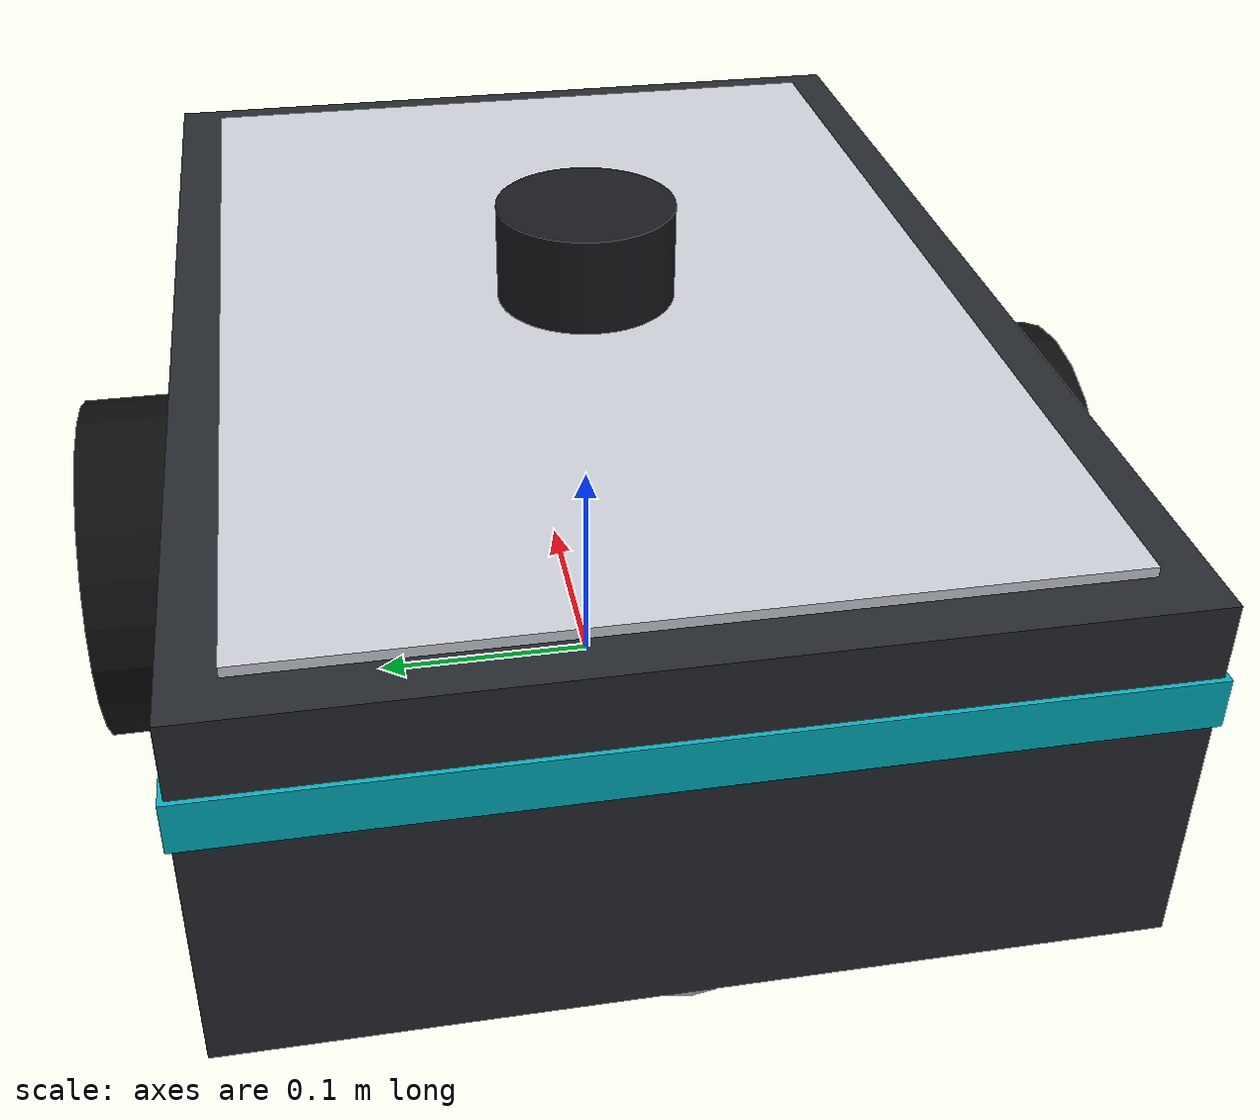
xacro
<?xml version="1.0"?>
<robot name="amr" xmlns:xacro="http://www.ros.org/wiki/xacro">

  <xacro:arg name="robot_name" default="robot_1"/>
  <xacro:arg name="accent_color" default="0.0 0.70 0.75 1.0"/>
  <xacro:arg name="use_sim" default="true"/>
  <xacro:arg name="use_zed_wrapper_frames" default="false"/>

  <xacro:property name="robot_name" value="$(arg robot_name)"/>

  <!-- ====================== TUNABLE PROPERTIES ====================== -->

  <!-- Chassis [m, kg] -->
  <xacro:property name="chassis_length"    value="0.50"/>
  <xacro:property name="chassis_width"     value="0.35"/>
  <xacro:property name="chassis_height"    value="0.15"/>
  <xacro:property name="chassis_mass"      value="12.0"/>
  <xacro:property name="ground_clearance"  value="0.04"/>   <!-- chassis underside to floor -->
  <xacro:property name="panel_thickness"   value="0.004"/>  <!-- light-gray top panel -->
  <xacro:property name="panel_inset"       value="0.02"/>   <!-- panel is smaller than chassis by 2x this -->
  <xacro:property name="panel_mass"        value="0.4"/>
  <xacro:property name="stripe_height"     value="0.02"/>   <!-- accent band around the chassis -->
  <xacro:property name="stripe_drop"       value="0.03"/>   <!-- band distance below chassis top -->
  <xacro:property name="stripe_mass"       value="0.1"/>

  <!-- Drive wheels -->
  <xacro:property name="wheel_radius"      value="0.075"/>
  <xacro:property name="wheel_width"       value="0.04"/>
  <xacro:property name="wheel_separation"  value="0.40"/>   <!-- center-to-center -->
  <xacro:property name="wheel_mass"        value="1.2"/>

  <!-- Passive casters (front and rear, frictionless spheres) -->
  <xacro:property name="caster_radius"     value="0.04"/>   <!-- keep equal to ground_clearance -->
  <xacro:property name="caster_x"          value="0.20"/>   <!-- +/- from base_link -->
  <xacro:property name="caster_mass"       value="0.3"/>

  <!-- Lidar (position in base_link, measured from the top of the light-gray panel) -->
  <xacro:property name="lidar_x"                 value="0.0"/>
  <xacro:property name="lidar_y"                 value="0.0"/>
  <xacro:property name="lidar_height_above_mount" value="0.0"/>   <!-- lift of mesh bottom above panel -->
  <xacro:property name="lidar_scan_height"       value="0.0207"/> <!-- scan plane above mesh bottom [PLACEHOLDER: check datasheet] -->
  <xacro:property name="lidar_mass"              value="0.19"/>
  <xacro:property name="lidar_collision_radius"  value="0.038"/>
  <xacro:property name="lidar_collision_height"  value="0.041"/>

  <!-- ZED camera (center of the camera body) -->
  <xacro:property name="zed_name"                value="zed"/>
  <xacro:property name="zed_x"                   value="0.268"/> <!-- in base_link: chassis front (0.25) + 2 mm band + zed_size_x/2 -->
  <xacro:property name="zed_y"                   value="0.0"/>
  <xacro:property name="zed_baseline"            value="0.12"/>
  <xacro:property name="zed_mass"                value="0.124"/>
  <xacro:property name="zed_size_x"              value="0.032"/> <!-- collision box -->
  <xacro:property name="zed_size_y"              value="0.175"/>
  <xacro:property name="zed_size_z"              value="0.030"/>
  <xacro:property name="zed_mesh_yaw"            value="0.0"/>   <!-- set to ${pi} if the mesh faces backwards -->

  <!-- ====================== DERIVED VALUES ====================== -->
  <!-- base_link sits on the wheel axle; base_footprint is on the floor below it. -->
  <xacro:property name="chassis_z"     value="${ground_clearance + chassis_height / 2.0 - wheel_radius}"/>
  <xacro:property name="chassis_top_z" value="${chassis_z + chassis_height / 2.0 + panel_thickness}"/>
  <xacro:property name="lidar_z"       value="${chassis_top_z + lidar_height_above_mount + lidar_scan_height}"/>
  <xacro:property name="zed_z"         value="${chassis_z}"/>  <!-- camera centered on the front face of the chassis -->

  <!-- Mesh path: absolute file:// for Gazebo, package:// for RViz/URDF-only use. -->
  <xacro:if value="$(arg use_sim)">
    <xacro:property name="mesh_prefix" value="file://$(find fleet_description)/meshes/"/>
  </xacro:if>
  <xacro:unless value="$(arg use_sim)">
    <xacro:property name="mesh_prefix" value="package://fleet_description/meshes/"/>
  </xacro:unless>

  <!-- Frame the center RGB-D sensor is attached to. -->
  <xacro:if value="$(arg use_zed_wrapper_frames)">
    <xacro:property name="zed_center_frame" value="${zed_name}_camera_center"/>
  </xacro:if>
  <xacro:unless value="$(arg use_zed_wrapper_frames)">
    <xacro:property name="zed_center_frame" value="${zed_name}_camera_link"/>
  </xacro:unless>

  <!-- ====================== INCLUDES ====================== -->
  <xacro:include filename="inertial.xacro"/>
  <xacro:include filename="materials.xacro"/>
  <xacro:include filename="amr_body.xacro"/>
  <xacro:include filename="lidar.xacro"/>
  <xacro:include filename="zed_camera.xacro"/>
  <xacro:include filename="gazebo.xacro"/>

  <!-- ====================== ROBOT ====================== -->
  <xacro:amr_body/>

  <xacro:lidar parent="base_link" x="${lidar_x}" y="${lidar_y}" z="${lidar_z}"/>

  <xacro:zed_camera parent="base_link" name="${zed_name}"
                    wrapper_frames="$(arg use_zed_wrapper_frames)"
                    x="${zed_x}" y="${zed_y}" z="${zed_z}"/>

  <xacro:if value="$(arg use_sim)">
    <xacro:gz_sim_extensions/>
  </xacro:if>

</robot>

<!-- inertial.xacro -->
<robot xmlns:xacro="http://www.ros.org/wiki/xacro">

  <!-- Solid box, x/y/z are the full edge lengths. -->
  <xacro:macro name="box_inertial" params="m x y z *origin">
    <inertial>
      <xacro:insert_block name="origin"/>
      <mass value="${m}"/>
      <inertia ixx="${m * (y * y + z * z) / 12.0}" ixy="0.0" ixz="0.0"
               iyy="${m * (x * x + z * z) / 12.0}" iyz="0.0"
               izz="${m * (x * x + y * y) / 12.0}"/>
    </inertial>
  </xacro:macro>

  <!-- Solid cylinder whose axis is the inertial frame's Z axis. -->
  <xacro:macro name="cylinder_inertial" params="m r h *origin">
    <inertial>
      <xacro:insert_block name="origin"/>
      <mass value="${m}"/>
      <inertia ixx="${m * (3.0 * r * r + h * h) / 12.0}" ixy="0.0" ixz="0.0"
               iyy="${m * (3.0 * r * r + h * h) / 12.0}" iyz="0.0"
               izz="${m * r * r / 2.0}"/>
    </inertial>
  </xacro:macro>

  <!-- Solid sphere. -->
  <xacro:macro name="sphere_inertial" params="m r *origin">
    <inertial>
      <xacro:insert_block name="origin"/>
      <mass value="${m}"/>
      <inertia ixx="${2.0 * m * r * r / 5.0}" ixy="0.0" ixz="0.0"
               iyy="${2.0 * m * r * r / 5.0}" iyz="0.0"
               izz="${2.0 * m * r * r / 5.0}"/>
    </inertial>
  </xacro:macro>

</robot>

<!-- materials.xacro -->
<robot xmlns:xacro="http://www.ros.org/wiki/xacro">

  <xacro:property name="chassis_body_rgba"  value="0.15 0.16 0.18 1.0"/>
  <xacro:property name="chassis_panel_rgba" value="0.80 0.82 0.85 1.0"/>
  <xacro:property name="accent_rgba"        value="$(arg accent_color)"/>
  <xacro:property name="wheel_rgba"         value="0.05 0.05 0.05 1.0"/>
  <xacro:property name="caster_rgba"        value="0.70 0.70 0.72 1.0"/>
  <xacro:property name="lidar_rgba"         value="0.10 0.10 0.12 1.0"/>
  <xacro:property name="zed_rgba"           value="0.05 0.05 0.06 1.0"/>

  <material name="chassis_body"><color rgba="${chassis_body_rgba}"/></material>
  <material name="chassis_panel"><color rgba="${chassis_panel_rgba}"/></material>
  <material name="accent"><color rgba="${accent_rgba}"/></material>
  <material name="wheel"><color rgba="${wheel_rgba}"/></material>
  <material name="caster"><color rgba="${caster_rgba}"/></material>
  <material name="lidar"><color rgba="${lidar_rgba}"/></material>
  <material name="zed"><color rgba="${zed_rgba}"/></material>

  <!-- Gazebo material for one link (applies to the link's visuals). -->
  <xacro:macro name="gz_material" params="link rgba specular:='0.2 0.2 0.2 1.0'">
    <gazebo reference="${link}">
      <visual>
        <material>
          <ambient>${rgba}</ambient>
          <diffuse>${rgba}</diffuse>
          <specular>${specular}</specular>
        </material>
      </visual>
    </gazebo>
  </xacro:macro>

</robot>

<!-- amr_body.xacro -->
<!-- Chassis, top panel, accent band, drive wheels and casters.
     base_footprint (floor) -> base_link (wheel-axle height, REP-105). -->
<robot xmlns:xacro="http://www.ros.org/wiki/xacro">

  <xacro:macro name="wheel" params="side y_sign">
    <link name="${side}_wheel_link">
      <visual>
        <origin xyz="0 0 0" rpy="${pi / 2.0} 0 0"/>
        <geometry><cylinder radius="${wheel_radius}" length="${wheel_width}"/></geometry>
        <material name="wheel"/>
      </visual>
      <collision>
        <origin xyz="0 0 0" rpy="${pi / 2.0} 0 0"/>
        <geometry><cylinder radius="${wheel_radius}" length="${wheel_width}"/></geometry>
      </collision>
      <xacro:cylinder_inertial m="${wheel_mass}" r="${wheel_radius}" h="${wheel_width}">
        <origin xyz="0 0 0" rpy="${pi / 2.0} 0 0"/>
      </xacro:cylinder_inertial>
    </link>
    <joint name="${side}_wheel_joint" type="continuous">
      <parent link="base_link"/>
      <child link="${side}_wheel_link"/>
      <origin xyz="0 ${y_sign * wheel_separation / 2.0} 0" rpy="0 0 0"/>
      <axis xyz="0 1 0"/>
      <dynamics damping="0.01" friction="0.0"/>
    </joint>
  </xacro:macro>

  <xacro:macro name="caster" params="name x">
    <link name="${name}_link">
      <visual>
        <origin xyz="0 0 0" rpy="0 0 0"/>
        <geometry><sphere radius="${caster_radius}"/></geometry>
        <material name="caster"/>
      </visual>
      <collision>
        <origin xyz="0 0 0" rpy="0 0 0"/>
        <geometry><sphere radius="${caster_radius}"/></geometry>
      </collision>
      <xacro:sphere_inertial m="${caster_mass}" r="${caster_radius}">
        <origin xyz="0 0 0" rpy="0 0 0"/>
      </xacro:sphere_inertial>
    </link>
    <joint name="${name}_joint" type="fixed">
      <parent link="base_link"/>
      <child link="${name}_link"/>
      <!-- ball center is caster_radius above the floor -->
      <origin xyz="${x} 0 ${caster_radius - wheel_radius}" rpy="0 0 0"/>
    </joint>
  </xacro:macro>

  <xacro:macro name="amr_body">

    <link name="base_footprint"/>
    <joint name="base_footprint_joint" type="fixed">
      <parent link="base_footprint"/>
      <child link="base_link"/>
      <origin xyz="0 0 ${wheel_radius}" rpy="0 0 0"/>
    </joint>

    <!-- Chassis (graphite) -->
    <link name="base_link">
      <visual>
        <origin xyz="0 0 ${chassis_z}" rpy="0 0 0"/>
        <geometry><box size="${chassis_length} ${chassis_width} ${chassis_height}"/></geometry>
        <material name="chassis_body"/>
      </visual>
      <collision>
        <origin xyz="0 0 ${chassis_z}" rpy="0 0 0"/>
        <geometry><box size="${chassis_length} ${chassis_width} ${chassis_height}"/></geometry>
      </collision>
      <xacro:box_inertial m="${chassis_mass}" x="${chassis_length}" y="${chassis_width}" z="${chassis_height}">
        <origin xyz="0 0 ${chassis_z}" rpy="0 0 0"/>
      </xacro:box_inertial>
    </link>

    <!-- Top panel (light gray) -->
    <link name="top_panel_link">
      <visual>
        <origin xyz="0 0 0" rpy="0 0 0"/>
        <geometry>
          <box size="${chassis_length - 2.0 * panel_inset} ${chassis_width - 2.0 * panel_inset} ${panel_thickness}"/>
        </geometry>
        <material name="chassis_panel"/>
      </visual>
      <xacro:box_inertial m="${panel_mass}" x="${chassis_length - 2.0 * panel_inset}"
                          y="${chassis_width - 2.0 * panel_inset}" z="${panel_thickness}">
        <origin xyz="0 0 0" rpy="0 0 0"/>
      </xacro:box_inertial>
    </link>
    <joint name="top_panel_joint" type="fixed">
      <parent link="base_link"/>
      <child link="top_panel_link"/>
      <origin xyz="0 0 ${chassis_z + chassis_height / 2.0 + panel_thickness / 2.0}" rpy="0 0 0"/>
    </joint>

    <!-- Accent band (per-robot color), 2 mm proud of the chassis sides -->
    <link name="accent_stripe_link">
      <visual>
        <origin xyz="0 0 0" rpy="0 0 0"/>
        <geometry>
          <box size="${chassis_length + 0.004} ${chassis_width + 0.004} ${stripe_height}"/>
        </geometry>
        <material name="accent"/>
      </visual>
      <xacro:box_inertial m="${stripe_mass}" x="${chassis_length + 0.004}"
                          y="${chassis_width + 0.004}" z="${stripe_height}">
        <origin xyz="0 0 0" rpy="0 0 0"/>
      </xacro:box_inertial>
    </link>
    <joint name="accent_stripe_joint" type="fixed">
      <parent link="base_link"/>
      <child link="accent_stripe_link"/>
      <origin xyz="0 0 ${chassis_z + chassis_height / 2.0 - stripe_drop - stripe_height / 2.0}" rpy="0 0 0"/>
    </joint>

    <!-- Drive wheels -->
    <xacro:wheel side="left"  y_sign="1.0"/>
    <xacro:wheel side="right" y_sign="-1.0"/>

    <!-- Casters -->
    <xacro:caster name="caster_front" x="${caster_x}"/>
    <xacro:caster name="caster_rear"  x="${-caster_x}"/>

  </xacro:macro>

</robot>

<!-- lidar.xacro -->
<robot xmlns:xacro="http://www.ros.org/wiki/xacro">

  <!-- Measured bounding box of lidar.stl [m] -->
  <xacro:property name="lidar_bbox_min_x" value="-0.06456"/>
  <xacro:property name="lidar_bbox_max_x" value="0.01107"/>
  <xacro:property name="lidar_bbox_min_y" value="-0.03702"/>
  <xacro:property name="lidar_bbox_max_y" value="0.03866"/>
  <xacro:property name="lidar_bbox_min_z" value="-0.03130"/>

  <!-- Visual offset: mesh XY center -> link axis, mesh bottom -> (scan plane - lidar_scan_height).
       With lidar_scan_height = 0 this gives the xyz = "0.0267 -0.0008 0.0313" offset. -->
  <xacro:property name="lidar_visual_x" value="${-(lidar_bbox_min_x + lidar_bbox_max_x) / 2.0}"/>
  <xacro:property name="lidar_visual_y" value="${-(lidar_bbox_min_y + lidar_bbox_max_y) / 2.0}"/>
  <xacro:property name="lidar_visual_z" value="${-lidar_bbox_min_z - lidar_scan_height}"/>

  <xacro:macro name="lidar" params="parent name:=lidar_link x:=0.0 y:=0.0 z:=0.0">
    <link name="${name}">
      <visual>
        <origin xyz="${lidar_visual_x} ${lidar_visual_y} ${lidar_visual_z}" rpy="0 0 0"/>
        <geometry>
          <mesh filename="${mesh_prefix}lidar.stl" scale="1 1 1"/>
        </geometry>
        <material name="lidar"/>
      </visual>
      <collision>
        <origin xyz="0 0 ${-lidar_scan_height + lidar_collision_height / 2.0}" rpy="0 0 0"/>
        <geometry>
          <cylinder radius="${lidar_collision_radius}" length="${lidar_collision_height}"/>
        </geometry>
      </collision>
      <xacro:cylinder_inertial m="${lidar_mass}" r="${lidar_collision_radius}" h="${lidar_collision_height}">
        <origin xyz="0 0 ${-lidar_scan_height + lidar_collision_height / 2.0}" rpy="0 0 0"/>
      </xacro:cylinder_inertial>
    </link>
    <joint name="lidar_joint" type="fixed">
      <parent link="${parent}"/>
      <child link="${name}"/>
      <origin xyz="${x} ${y} ${z}" rpy="0 0 0"/>
    </joint>
  </xacro:macro>

</robot>

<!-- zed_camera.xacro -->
<robot xmlns:xacro="http://www.ros.org/wiki/xacro">

  <!-- Measured bounding box of zed.stl [m] -->
  <xacro:property name="zed_bbox_min_x" value="-0.01660"/>
  <xacro:property name="zed_bbox_max_x" value="0.01519"/>
  <xacro:property name="zed_bbox_min_y" value="-0.08738"/>
  <xacro:property name="zed_bbox_max_y" value="0.08738"/>
  <xacro:property name="zed_bbox_min_z" value="-0.01496"/>
  <xacro:property name="zed_bbox_max_z" value="0.01496"/>
  <xacro:property name="zed_cx" value="${(zed_bbox_min_x + zed_bbox_max_x) / 2.0}"/>
  <xacro:property name="zed_cy" value="${(zed_bbox_min_y + zed_bbox_max_y) / 2.0}"/>
  <xacro:property name="zed_cz" value="${(zed_bbox_min_z + zed_bbox_max_z) / 2.0}"/>

  <xacro:macro name="zed_camera" params="parent name:=zed wrapper_frames:=false x:=0.0 y:=0.0 z:=0.0">

    <!-- wrapper layout: camera_link is at the camera base, camera_center is h/2 above it -->
    <xacro:if value="${wrapper_frames}">
      <xacro:property name="center_dz" value="${zed_size_z / 2.0}"/>
      <xacro:property name="center_frame" value="${name}_camera_center"/>
    </xacro:if>
    <xacro:unless value="${wrapper_frames}">
      <xacro:property name="center_dz" value="0.0"/>
      <xacro:property name="center_frame" value="${name}_camera_link"/>
    </xacro:unless>

    <!-- Put the mesh center exactly on the camera center, after applying zed_mesh_yaw. -->
    <xacro:property name="vis_x" value="${-(zed_cx * cos(zed_mesh_yaw) - zed_cy * sin(zed_mesh_yaw))}"/>
    <xacro:property name="vis_y" value="${-(zed_cx * sin(zed_mesh_yaw) + zed_cy * cos(zed_mesh_yaw))}"/>
    <xacro:property name="vis_z" value="${center_dz - zed_cz}"/>

    <link name="${name}_camera_link">
      <visual>
        <origin xyz="${vis_x} ${vis_y} ${vis_z}" rpy="0 0 ${zed_mesh_yaw}"/>
        <geometry>
          <mesh filename="${mesh_prefix}zed.stl" scale="1 1 1"/>
        </geometry>
        <material name="zed"/>
      </visual>
      <collision>
        <origin xyz="0 0 ${center_dz}" rpy="0 0 0"/>
        <geometry><box size="${zed_size_x} ${zed_size_y} ${zed_size_z}"/></geometry>
      </collision>
      <xacro:box_inertial m="${zed_mass}" x="${zed_size_x}" y="${zed_size_y}" z="${zed_size_z}">
        <origin xyz="0 0 ${center_dz}" rpy="0 0 0"/>
      </xacro:box_inertial>
    </link>
    <joint name="${name}_camera_joint" type="fixed">
      <parent link="${parent}"/>
      <child link="${name}_camera_link"/>
      <origin xyz="${x} ${y} ${z - center_dz}" rpy="0 0 0"/>
    </joint>

    <xacro:if value="${wrapper_frames}">
      <link name="${name}_camera_center"/>
      <joint name="${name}_camera_center_joint" type="fixed">
        <parent link="${name}_camera_link"/>
        <child link="${name}_camera_center"/>
        <origin xyz="0 0 ${center_dz}" rpy="0 0 0"/>
      </joint>
    </xacro:if>

    <!-- Left / right camera frames (x forward, y left, z up) -->
    <link name="${name}_left_camera_frame"/>
    <joint name="${name}_left_camera_joint" type="fixed">
      <parent link="${center_frame}"/>
      <child link="${name}_left_camera_frame"/>
      <origin xyz="0 ${zed_baseline / 2.0} 0" rpy="0 0 0"/>
    </joint>
    <link name="${name}_right_camera_frame"/>
    <joint name="${name}_right_camera_joint" type="fixed">
      <parent link="${center_frame}"/>
      <child link="${name}_right_camera_frame"/>
      <origin xyz="0 ${-zed_baseline / 2.0} 0" rpy="0 0 0"/>
    </joint>

    <!-- Optical frames (REP-103: z forward, x right, y down) -->
    <link name="${name}_left_camera_optical_frame"/>
    <joint name="${name}_left_camera_optical_joint" type="fixed">
      <parent link="${name}_left_camera_frame"/>
      <child link="${name}_left_camera_optical_frame"/>
      <origin xyz="0 0 0" rpy="${-pi / 2.0} 0 ${-pi / 2.0}"/>
    </joint>
    <link name="${name}_right_camera_optical_frame"/>
    <joint name="${name}_right_camera_optical_joint" type="fixed">
      <parent link="${name}_right_camera_frame"/>
      <child link="${name}_right_camera_optical_frame"/>
      <origin xyz="0 0 0" rpy="${-pi / 2.0} 0 ${-pi / 2.0}"/>
    </joint>

  </xacro:macro>

</robot>
